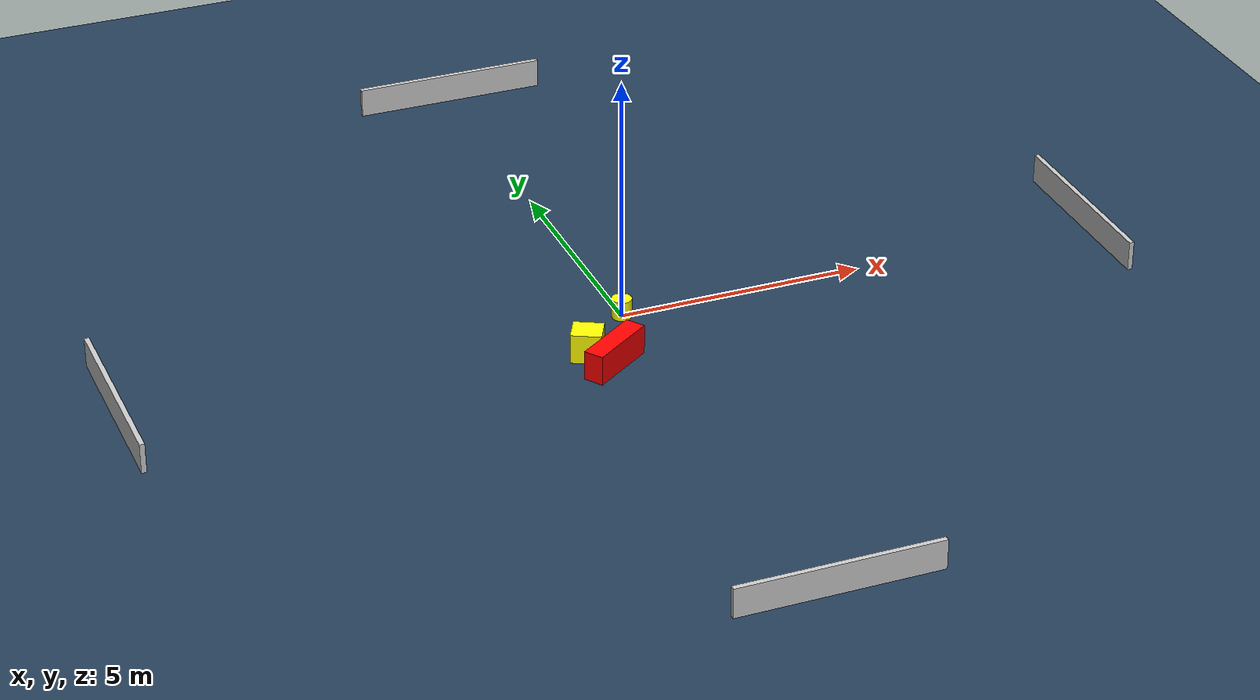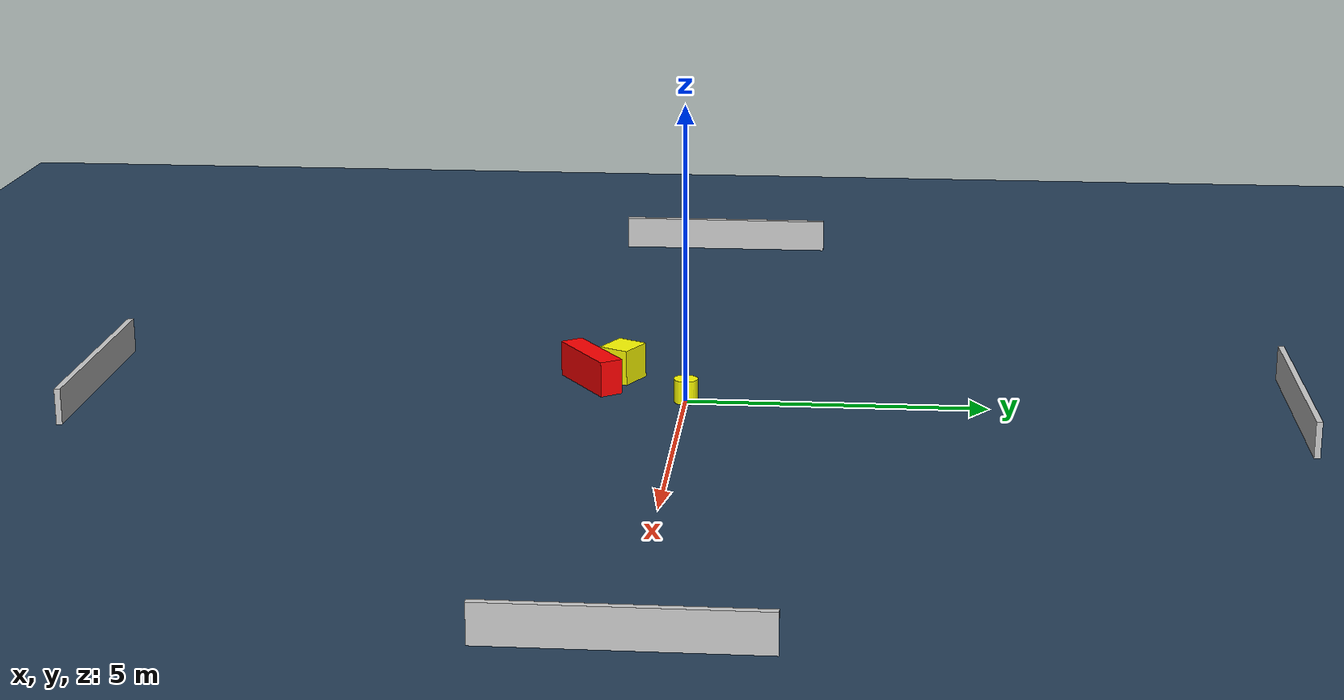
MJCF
<?xml version="1.0" ?>
<mujoco model="generated_environment">
  <option timestep="0.01" integrator="RK4" cone="elliptic"/>
  <default>
    <geom density="1"/>
  </default>
  <asset>
    <texture builtin="gradient" height="3072" name="skybox" rgb1="0.3 0.5 0.7" rgb2="0 0 0" type="skybox" width="512"/>
    <texture builtin="checker" height="300" name="groundplane" rgb1="0.2 0.3 0.4" rgb2="0.1 0.2 0.3" type="2d" width="300"/>
    <material name="groundplane" reflectance="0.2" texrepeat="5 5" texture="groundplane"/>
  </asset>
  <worldbody>
    <light dir="0 0 -1" directional="true" pos="0 0 1.5"/>
    <geom condim="3" friction="0.5 0.005 0.001" material="groundplane" name="floor" pos="0 0 0" size="0 0 0.05" type="plane"/>
    <body name="walls">
      <geom name="wall_1" condim="4" pos="-10.0 0.0 0.3" rgba="0.800000011920929 0.800000011920929 0.800000011920929 1.0" size="0.05 2.0 0.3" type="box"/>
      <geom name="wall_2" condim="4" pos="10.0 0.0 0.3" rgba="0.800000011920929 0.800000011920929 0.800000011920929 1.0" size="0.05 2.0 0.3" type="box"/>
      <geom name="wall_3" condim="4" pos="0.0 -10.0 0.3" rgba="0.800000011920929 0.800000011920929 0.800000011920929 1.0" size="2.0 0.05 0.3" type="box"/>
      <geom name="wall_4" condim="4" pos="0.0 10.0 0.3" rgba="0.800000011920929 0.800000011920929 0.800000011920929 1.0" size="2.0 0.05 0.3" type="box"/>
    </body>
    <body name="robot">
      <joint name="joint_x" type="slide" pos="0 0 0" axis="1 0 0"/>
      <joint name="joint_y" type="slide" pos="0 0 0" axis="0 1 0"/>
      <geom name="robot" type="cylinder" pos="0.0 0.0 0.2" size="0.2 0.2 0.0" mass="5.0" friction="1.0 0.005 0.0001" condim="4" rgba="1.0 1.0 0.0 1.0"/>
    </body>
    <body name="obstacle_1_movable">
      <geom name="obstacle_1_movable" condim="4" pos="-1.1612794818161583 -1.1685768354055817 0.3" euler="0 0 62.377852965230815" friction="0.0 0.005 0.001" rgba="1.0 1.0 0.0 1.0" size="0.266499649135278 0.29992607482989075 0.3" type="box" mass="0.1"/>
      <joint type="free"/>
    </body>
    <body name="obstacle_2_static">
      <geom name="obstacle_2_static" condim="4" pos="-0.8093885699437949 -1.6730299812608926 0.3" euler="0 0 304.7529129893701" friction="0.0 0.005 0.001" rgba="1.0 0.0 0.0 1.0" size="0.20075217505554654 0.7114372014625094 0.3" type="box"/>
    </body>
  </worldbody>
  <actuator>
    <motor name="actuator_x" joint="joint_x" gear="1" ctrlrange="-1 1"/>
    <motor name="actuator_y" joint="joint_y" gear="1" ctrlrange="-1 1"/>
  </actuator>
</mujoco>
